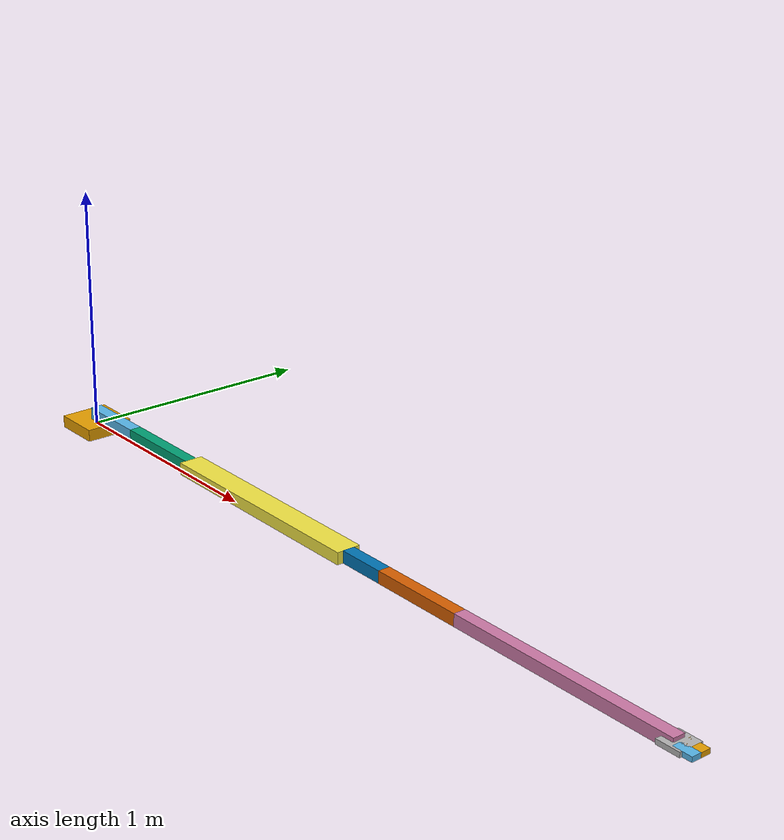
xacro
<?xml version="1.0"?>
<robot xmlns:xacro="http://www.ros.org/wiki/xacro" name="arm_6dof">
    <xacro:arg name="initial_positions_file" default="initial_positions.yaml" />

    <!-- Import arm_6dof urdf file -->
    <xacro:include filename="$(find control_robot)/urdf/arm_6dof.urdf" />

    <!-- Import control_xacro -->
    <xacro:include filename="arm_6dof.ros2_control.xacro" />

    <xacro:arm_6dof_ros2_control name="FakeSystem" initial_positions_file="$(arg initial_positions_file)"/>

</robot>

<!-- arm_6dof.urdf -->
<robot name="arm_6dof">

  <link name="base_link">
    <visual><geometry><box size="0.2 0.2 0.05"/></geometry></visual>
    <collision><geometry><box size="0.2 0.2 0.05"/></geometry></collision>
  </link>

  <!-- Joint 1 -->
  <joint name="joint1" type="revolute">
    <origin xyz="0 0 0.05"/><axis xyz="0 0 1"/>
    <parent link="base_link"/><child link="link1"/>
    <limit effort="1" velocity="1.0" lower="-3.14" upper="3.14"/>
  </joint>
  <link name="link1">
    <visual><origin xyz="0.15 0 0"/><geometry><box size="0.3 0.05 0.05"/></geometry></visual>
    <collision><origin xyz="0.15 0 0"/><geometry><box size="0.3 0.05 0.05"/></geometry></collision>
  </link>

  <joint name="joint2" type="revolute">
    <origin xyz="0.3 0 0"/><axis xyz="0 1 0"/>
    <parent link="link1"/><child link="link2"/>
    <limit effort="1" velocity="1.0" lower="-3.14" upper="3.14"/>
  </joint>
  <link name="link2">
    <visual><origin xyz="0.2 0 0"/><geometry><box size="0.4 0.05 0.05"/></geometry></visual>
    <collision><origin xyz="0.2 0 0"/><geometry><box size="0.4 0.05 0.05"/></geometry></collision>
  </link>

  <joint name="joint3" type="revolute">
    <origin xyz="0.4 0 0"/><axis xyz="0 0 1"/>
    <parent link="link2"/><child link="link3"/>
    <limit effort="1" velocity="1.0" lower="-3.14" upper="3.14"/>
  </joint>
  <link name="link3">
    <visual><origin xyz="0.5 0 0"/><geometry><box size="1.0 0.1 0.05"/></geometry></visual>
    <collision><origin xyz="0.5 0 0"/><geometry><box size="1.0 0.1 0.05"/></geometry></collision>
  </link>

  <joint name="joint4" type="revolute">
    <origin xyz="1.0 0 0"/><axis xyz="0 1 0"/>
    <parent link="link3"/><child link="link4"/>
    <limit effort="1" velocity="1.0" lower="-3.14" upper="3.14"/>
  </joint>
  <link name="link4">
    <visual><origin xyz="0.1 0 0"/><geometry><box size="0.2 0.05 0.05"/></geometry></visual>
    <collision><origin xyz="0.1 0 0"/><geometry><box size="0.2 0.05 0.05"/></geometry></collision>
  </link>

  <joint name="joint5" type="revolute">
    <origin xyz="0.2 0 0"/><axis xyz="1 0 0"/>
    <parent link="link4"/><child link="link5"/>
    <limit effort="1" velocity="1.0" lower="-3.14" upper="3.14"/>
  </joint>
  <link name="link5">
    <visual><origin xyz="0.2 0 0"/><geometry><box size="0.4 0.05 0.05"/></geometry></visual>
    <collision><origin xyz="0.2 0 0"/><geometry><box size="0.4 0.05 0.05"/></geometry></collision>
  </link>

  <joint name="joint6" type="revolute">
    <origin xyz="0.4 0 0"/><axis xyz="0 0 1"/>
    <parent link="link5"/><child link="link6"/>
    <limit effort="1" velocity="1.0" lower="-3.14" upper="3.14"/>
  </joint>
  <link name="link6">
    <visual><origin xyz="0.5 0 0"/><geometry><box size="1.0 0.05 0.05"/></geometry></visual>
    <collision><origin xyz="0.5 0 0"/><geometry><box size="1.0 0.05 0.05"/></geometry></collision>
  </link>

  <!-- Palm and Gripper -->
  <joint name="gripper_base_joint" type="fixed">
    <origin xyz="1.0 0 0"/><parent link="link6"/><child link="palm_link"/>
  </joint>
  <link name="palm_link">
    <visual><geometry><box size="0.1 0.1 0.02"/></geometry></visual>
    <collision><geometry><box size="0.1 0.1 0.02"/></geometry></collision>
  </link>

  <joint name="left_finger_joint" type="prismatic">
    <origin xyz="0.05 0.02 0"/><axis xyz="0 1 0"/>
    <parent link="palm_link"/><child link="left_finger"/>
    <limit lower="0" upper="0.04" effort="1" velocity="0.1"/>
  </joint>
  <link name="left_finger">
    <visual><geometry><box size="0.08 0.04 0.02"/></geometry></visual>
    <collision><geometry><box size="0.08 0.04 0.02"/></geometry></collision>
  </link>

  <joint name="right_finger_joint" type="prismatic">
    <origin xyz="0.05 -0.02 0"/><axis xyz="0 -1 0"/>
    <parent link="palm_link"/><child link="right_finger"/>
    <limit lower="0" upper="0.04" effort="1" velocity="0.1"/>
  </joint>
  <link name="right_finger">
    <visual><geometry><box size="0.08 0.04 0.02"/></geometry></visual>
    <collision><geometry><box size="0.08 0.04 0.02"/></geometry></collision>
  </link>

  <ros2_control name="FakeArmSystem" type="system">
    <hardware>
      <plugin>fake_components/GenericSystem</plugin>
    </hardware>

    <!-- Arm joints -->
    <joint name="joint1">
      <command_interface name="position"/>
      <state_interface name="position"/>
      <state_interface name="velocity"/>
    </joint>
    <joint name="joint2">
      <command_interface name="position"/>
      <state_interface name="position"/>
      <state_interface name="velocity"/>
    </joint>
    <joint name="joint3">
      <command_interface name="position"/>
      <state_interface name="position"/>
      <state_interface name="velocity"/>
    </joint>
    <joint name="joint4">
      <command_interface name="position"/>
      <state_interface name="position"/>
      <state_interface name="velocity"/>
    </joint>
    <joint name="joint5">
      <command_interface name="position"/>
      <state_interface name="position"/>
      <state_interface name="velocity"/>
    </joint>
    <joint name="joint6">
      <command_interface name="position"/>
      <state_interface name="position"/>
      <state_interface name="velocity"/>
    </joint>

    <!-- Gripper joints -->
    <joint name="left_finger_joint">
      <command_interface name="position"/>
      <state_interface name="position"/>
      <state_interface name="velocity"/>
    </joint>
    <joint name="right_finger_joint">
      <command_interface name="position"/>
      <state_interface name="position"/>
      <state_interface name="velocity"/>
    </joint>
  </ros2_control>

</robot>
